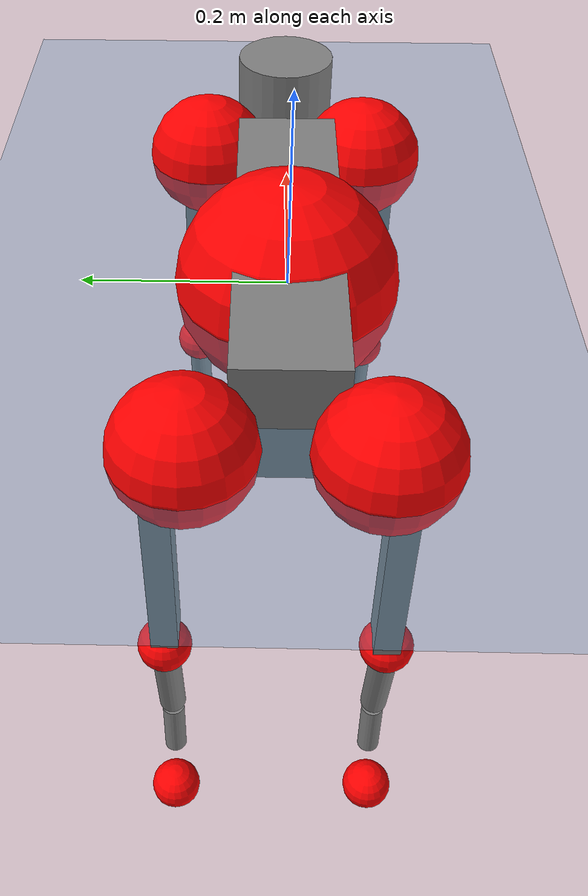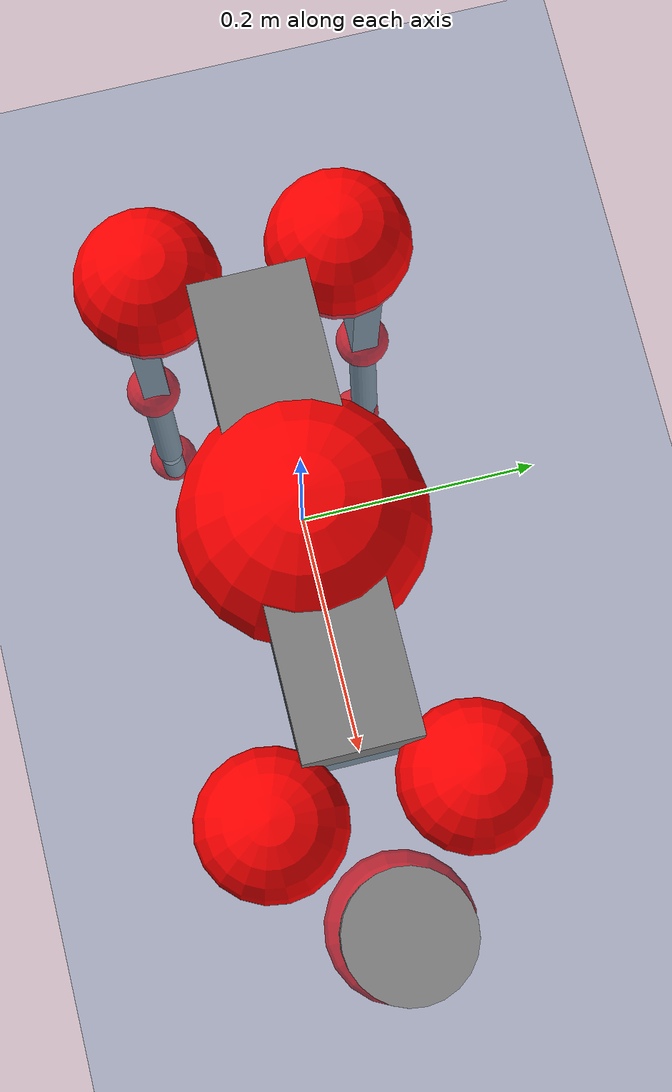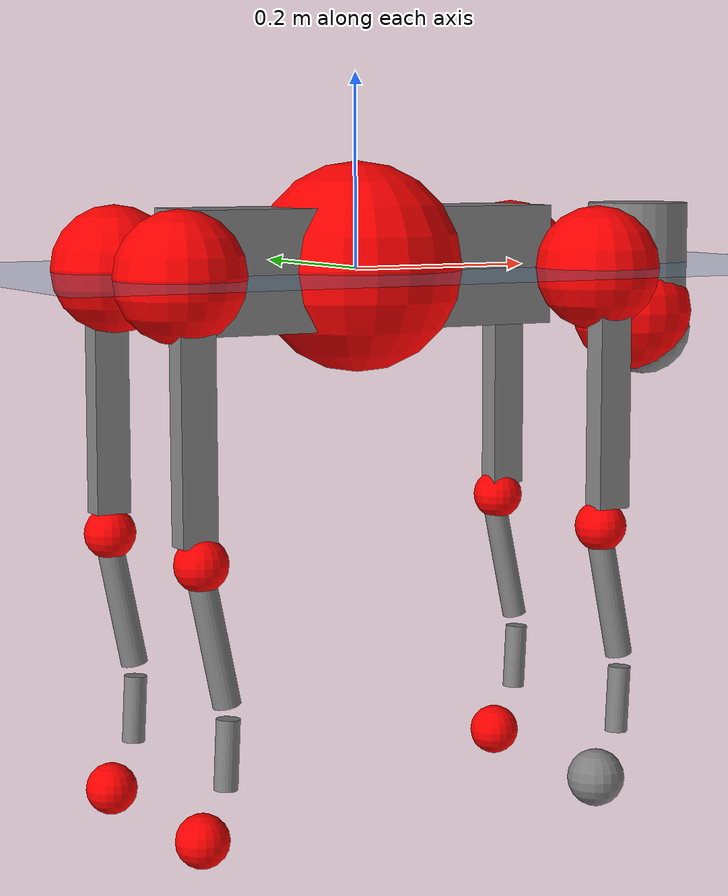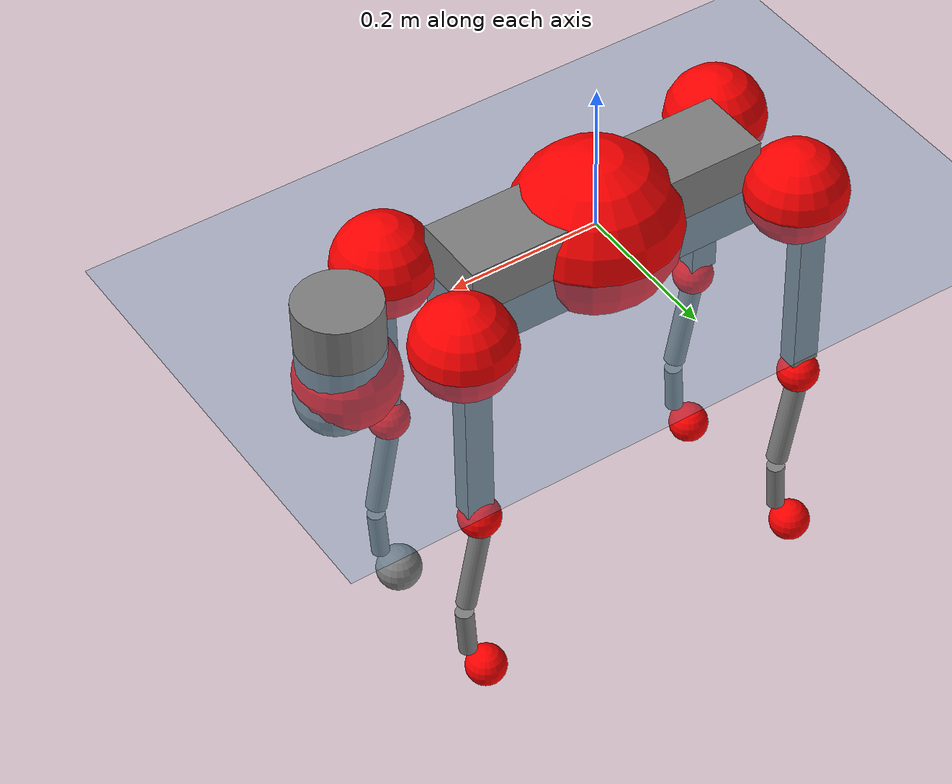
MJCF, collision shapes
<mujoco model="go2">
  <compiler angle="radian" assetdir="assets" balanceinertia="true" inertiafromgeom="false"/>

  <option timestep="0.005" density="1.2" viscosity="2e-05"/>

  <size nkey="1"/>

  <visual>
    <quality shadowsize="8192"/>
    <map shadowclip="0.5"/>
  </visual>

  <default>
    <default class="/">
      <geom contype="0" conaffinity="0" group="1" solref="-1000 -80"/>
      <site size="0.01 0.005 0.005" group="5"/>
      <general forcelimited="true" biastype="affine" gainprm="20" biasprm="0 -20 -0.5"/>
      <default class="go2">
        <joint armature="0.01" damping="0.01" frictionloss="0.2"/>
        <geom condim="1" margin="0.001"/>
        <default class="visual">
          <geom type="mesh" group="2"/>
        </default>
        <default class="collision">
          <geom group="3"/>
          <default class="foot">
            <geom size="0.022 0 0" condim="6" priority="1" friction="0.8 0.02 0.01" solimp="0.015 1 0.022"/>
          </default>
        </default>
        <default class="reward_collision_sphere">
          <geom group="5" rgba="1 0 0 1"/>
        </default>
      </default>
    </default>
  </default>

  <asset>
    <texture type="skybox" colorspace="auto" name="//unnamed_texture_0" builtin="gradient" rgb1="0.95 0.95 0.95" rgb2="0.95 0.95 0.95" width="100" height="600"/>
    <texture type="2d" colorspace="auto" name="texplane" builtin="checker" rgb1="0.345 0.575 0.748" rgb2="0.345 0.575 0.748" markrgb="1 1 1" width="512" height="512"/>
    <material name="MatPlane" class="/" texture="texplane" texuniform="true" texrepeat="2 2" specular="0.9"/>
    <material name="metal" class="/" rgba="0.9 0.95 0.95 1"/>
    <material name="black" class="/" rgba="0 0 0 1"/>
    <material name="white" class="/"/>
    <material name="gray" class="/" rgba="0.671705 0.692426 0.77427 1"/>
    <mesh name="base_0" class="/" file="base_0.obj"/>
    <mesh name="base_1" class="/" file="base_1.obj"/>
    <mesh name="base_2" class="/" file="base_2.obj"/>
    <mesh name="base_3" class="/" file="base_3.obj"/>
    <mesh name="base_4" class="/" file="base_4.obj"/>
    <mesh name="hip_0" class="/" file="hip_0.obj"/>
    <mesh name="hip_1" class="/" file="hip_1.obj"/>
    <mesh name="thigh_0" class="/" file="thigh_0.obj"/>
    <mesh name="thigh_1" class="/" file="thigh_1.obj"/>
    <mesh name="thigh_mirror_0" class="/" file="thigh_mirror_0.obj"/>
    <mesh name="thigh_mirror_1" class="/" file="thigh_mirror_1.obj"/>
    <mesh name="calf_0" class="/" file="calf_0.obj"/>
    <mesh name="calf_1" class="/" file="calf_1.obj"/>
    <mesh name="calf_mirror_0" class="/" file="calf_mirror_0.obj"/>
    <mesh name="calf_mirror_1" class="/" file="calf_mirror_1.obj"/>
    <mesh name="foot" class="/" file="foot.obj"/>
  </asset>

  <worldbody>
    <geom name="floor" class="/" size="100 100 0.125" type="plane" group="0" material="MatPlane"/>
    <light name="toplight_shadow" class="/" pos="0 0 5" dir="0.0990148 0.0990148 -0.990148" type="directional" ambient="0.04 0.04 0.04" diffuse="0.55 0.55 0.55" specular="0.12 0.12 0.12"/>
    <light name="toplight_fill" class="/" pos="0 0 5" dir="0.0990148 0.0990148 -0.990148" type="directional" castshadow="false" ambient="0.04 0.04 0.04" diffuse="0.3 0.3 0.3" specular="0.08 0.08 0.08"/>
    <body name="trunk" childclass="go2" pos="0.00201374 0.000739726 0.00194689" quat="0.999999 0.000176618 -2.35516e-05 0.00108484">
      <inertial pos="0.0289548 0.00440572 -0.00618514" quat="0.000659106 0.718216 -0.00301084 0.695813" mass="9.00811" diaginertia="0.291095 0.0205426 0.0767399"/>
      <joint name="//unnamed_joint_0" type="free" armature="0" damping="0" frictionloss="0"/>
      <geom name="//unnamed_geom_1" class="visual" material="black" mesh="base_0"/>
      <geom name="//unnamed_geom_2" class="visual" material="black" mesh="base_1"/>
      <geom name="//unnamed_geom_3" class="visual" material="black" mesh="base_2"/>
      <geom name="//unnamed_geom_4" class="visual" material="white" mesh="base_3"/>
      <geom name="//unnamed_geom_5" class="visual" material="gray" mesh="base_4"/>
      <geom name="trunk_1" class="collision" size="0.203915 0.0506806 0.0617924" type="box"/>
      <geom name="trunk_2" class="collision" size="0.0542039 0.0487835" pos="0.351633 0 0.0127804" type="cylinder"/>
      <geom name="trunk_3" class="collision" size="0.0509517" pos="0.361503 0 -0.0766823"/>
      <geom name="//unnamed_geom_9" class="reward_collision_sphere" size="0.108408"/>
      <geom name="//unnamed_geom_10" class="reward_collision_sphere" size="0.0650447" pos="0.345464 0 -0.0575118"/>
      <site name="imu" pos="0.000545542 -0.0116266 0.0322674" size="0.0108408"/>
      <camera name="track" pos="0 -1.48079 0" quat="0.707107 0.707107 0 0" mode="trackcom"/>
      <camera name="ego_camera" pos="0.384946 0 0.0575118" quat="-0.5 -0.5 0.5 0.5"/>
      <body name="FL_hip" pos="0.240404 0.0336917 -0.00178764" quat="1 -2.22251e-05 0.000152586 4.50299e-06">
        <inertial pos="-0.0112515 0.00161551 -0.00243169" quat="0.493287 0.501022 0.506466 0.499137" mass="0.903213" diaginertia="0.00265457 0.000130622 0.00164491"/>
        <joint name="FL_hip_joint" pos="0 0 0" axis="0.999899 -0.0136318 0.0040942" range="-1.09107 1.03842" armature="0.00776983" damping="0.0386743" frictionloss="0.191486"/>
        <geom name="//unnamed_geom_11" class="visual" material="metal" mesh="hip_0"/>
        <geom name="//unnamed_geom_12" class="visual" material="gray" mesh="hip_1"/>
        <geom name="//unnamed_geom_13" class="collision" size="0.0498676 0.0216816" pos="0 0.0592316 0" quat="0.707107 0.707107 0 0" type="cylinder"/>
        <geom name="//unnamed_geom_14" class="reward_collision_sphere" size="0.0650447" pos="0 0.0518276 0"/>
        <body name="FL_thigh" pos="0.000118753 0.066625 -2.77113e-05" quat="0.999998 -0.00188056 -0.000328891 -0.000468567">
          <inertial pos="-0.00391597 -0.0163961 -0.0466172" quat="0.832056 0.0862389 -0.0117206 0.547821" mass="1.47932" diaginertia="0.0184361 0.00132281 0.0029701"/>
          <joint name="FL_thigh_joint" pos="0 0 0" axis="0.0295281 0.999492 0.0119919" stiffness="0.00926916" range="-1.61092 3.54596" armature="0.0120231" damping="0.000953339" frictionloss="0.26416"/>
          <geom name="//unnamed_geom_15" class="visual" material="metal" mesh="thigh_0"/>
          <geom name="//unnamed_geom_16" class="visual" material="gray" mesh="thigh_1"/>
          <geom name="//unnamed_geom_17" class="collision" size="0.115454 0.01328 0.0184293" pos="0 0 -0.136111" quat="0.707107 0 0.707107 0" type="box"/>
          <body name="FL_calf" pos="-0.00338535 0.00376552 -0.265879" quat="0.999999 0.000952391 0.00124454 -0.000549149">
            <inertial pos="0.0055428 -0.00116307 -0.18266" quat="0.714616 0.00953065 -0.00739796 0.699413" mass="0.304257" diaginertia="0.00430057 0.000328044 0.000176929"/>
            <joint name="FL_calf_joint" pos="0 0 0" axis="-0.0746295 0.99719 0.00651355" stiffness="0.000977492" range="-2.69166 -0.816569" armature="0.010877" damping="0.0293541" frictionloss="0.203201"/>
            <geom name="//unnamed_geom_18" class="visual" material="gray" mesh="calf_0"/>
            <geom name="//unnamed_geom_19" class="visual" material="black" mesh="calf_1"/>
            <geom name="FL_calf0" class="collision" size="0.0130089 0.0650447" pos="0.0098704 0 -0.0766823" quat="0.994493 0 -0.104807 0" type="cylinder"/>
            <geom name="//unnamed_geom_21" class="collision" size="0.0119249 0.0352325" pos="0.024676 0 -0.18915" quat="0.999688 0 0.0249974 0" type="cylinder"/>
            <geom name="//unnamed_geom_22" class="visual" pos="0 0 -0.272222" quat="1 0 0 0" material="black" mesh="foot"/>
            <geom name="FL_foot" class="foot" size="0.0179533" pos="-0.0024676 0 -0.272222"/>
            <geom name="//unnamed_geom_24" class="reward_collision_sphere" size="0.0271019"/>
            <geom name="//unnamed_geom_25" class="reward_collision_sphere" size="0.0271019" pos="-0.0024676 0 -0.272222"/>
            <site name="FL_foot" class="foot" pos="-0.0024676 0 -0.272222" size="0.0108408"/>
          </body>
        </body>
      </body>
      <body name="FR_hip" pos="0.240116 -0.0332741 -0.00351809" quat="1 6.97937e-05 5.65997e-05 -0.000149626">
        <inertial pos="-0.0108677 -0.00332113 0.00142701" quat="0.498427 0.505409 0.49861 0.497514" mass="0.829083" diaginertia="0.00247289 0.0001297 0.00160526"/>
        <joint name="FR_hip_joint" pos="0 0 0" axis="0.999992 -0.00400372 0.000111909" range="-0.953016 1.09252" armature="0.0130477" damping="0" frictionloss="0.265446"/>
        <geom name="//unnamed_geom_26" class="visual" pos="0 -4.68374e-09 -2.00895e-07" quat="4.63268e-05 1 0 0" material="metal" mesh="hip_0"/>
        <geom name="//unnamed_geom_27" class="visual" pos="0 -7.5929e-09 4.9689e-07" quat="4.63268e-05 1 0 0" material="gray" mesh="hip_1"/>
        <geom name="//unnamed_geom_28" class="collision" size="0.0498676 0.0216816" pos="0 -0.0592316 0" quat="0.707107 0.707107 0 0" type="cylinder"/>
        <geom name="//unnamed_geom_29" class="reward_collision_sphere" size="0.0650447" pos="0 -0.0518276 0"/>
        <body name="FR_thigh" pos="-0.00062113 -0.0760156 0.00053114" quat="1 0.000724602 -0.000447378 0.000287981">
          <inertial pos="-0.00431767 0.0187956 -0.043841" quat="0.563041 -0.0297618 0.0949707 0.820414" mass="1.6207" diaginertia="0.01805 0.00132309 0.00311357"/>
          <joint name="FR_thigh_joint" pos="0 0 0" axis="0.0159518 -0.999864 -0.00417607" stiffness="0.00394427" range="-3.61566 1.53763" armature="0.0106641" damping="0.0200906" frictionloss="0.1367"/>
          <geom name="//unnamed_geom_30" class="visual" material="metal" mesh="thigh_mirror_0"/>
          <geom name="//unnamed_geom_31" class="visual" material="gray" mesh="thigh_mirror_1"/>
          <geom name="//unnamed_geom_32" class="collision" size="0.115454 0.01328 0.0184293" pos="0 0 -0.136111" quat="0.707107 0 0.707107 0" type="box"/>
          <body name="FR_calf" pos="-0.00441536 0.00533972 -0.27134" quat="1 -5.33009e-05 -0.000318379 0.000724138">
            <inertial pos="0.00831724 -0.000774732 -0.185863" quat="0.703881 -0.00245074 0.00445488 0.7103" mass="0.300545" diaginertia="0.00461892 0.00034111 0.000185923"/>
            <joint name="FR_calf_joint" pos="0 0 0" axis="-0.00128852 -0.999963 0.00848257" stiffness="0.00797203" range="0.854396 2.69542" armature="0.00997117" damping="0.0179869" frictionloss="0.279993"/>
            <geom name="//unnamed_geom_33" class="visual" material="gray" mesh="calf_mirror_0"/>
            <geom name="//unnamed_geom_34" class="visual" material="black" mesh="calf_mirror_1"/>
            <geom name="FR_calf0" class="collision" size="0.014093 0.0650447" pos="0.012338 0 -0.0766823" quat="0.995004 0 -0.0998334 0" type="cylinder"/>
            <geom name="//unnamed_geom_36" class="collision" size="0.0119249 0.0352325" pos="0.024676 0 -0.18915" quat="0.999688 0 0.0249974 0" type="cylinder"/>
            <geom name="//unnamed_geom_37" class="visual" pos="0 0 -0.272222" quat="1 0 0 0" material="black" mesh="foot"/>
            <geom name="FR_foot" class="foot" size="0.0303738" pos="-0.0024676 0 -0.272222"/>
            <geom name="//unnamed_geom_39" class="reward_collision_sphere" size="0.0271019"/>
            <geom name="//unnamed_geom_40" class="reward_collision_sphere" size="0.0271019" pos="-0.0024676 0 -0.272222"/>
            <site name="FR_foot" class="foot" pos="-0.0024676 0 -0.272222" size="0.0108408"/>
          </body>
        </body>
      </body>
      <body name="RL_hip" pos="-0.232458 0.0350056 -0.000285577" quat="1 0.000173696 0.000361561 0.000914934">
        <inertial pos="0.00709519 -0.00342642 0.00189487" quat="0.504996 0.50252 0.495411 0.497012" mass="0.876388" diaginertia="0.00260317 0.000128672 0.00180924"/>
        <joint name="RL_hip_joint" pos="0 0 0" axis="-0.999993 -0.00283758 0.00231591" range="-1.02245 1.19434" armature="0.0135748" damping="0.00987602" frictionloss="0.203837"/>
        <geom name="//unnamed_geom_41" class="visual" pos="3.8539e-10 0 7.55454e-08" quat="4.63268e-05 0 1 0" material="metal" mesh="hip_0"/>
        <geom name="//unnamed_geom_42" class="visual" pos="6.24764e-10 0 6.6998e-08" quat="4.63268e-05 0 1 0" material="gray" mesh="hip_1"/>
        <geom name="//unnamed_geom_43" class="collision" size="0.0498676 0.0216816" pos="0 0.0592316 0" quat="0.707107 0.707107 0 0" type="cylinder"/>
        <geom name="//unnamed_geom_44" class="reward_collision_sphere" size="0.0650447" pos="0 0.0518276 0"/>
        <body name="RL_thigh" pos="0.00131596 0.0777937 -0.00208558" quat="1 -2.87298e-05 -2.21284e-05 1.01624e-05">
          <inertial pos="-0.00508938 -0.0198118 -0.0441022" quat="0.830129 0.0814099 -0.0289093 0.550838" mass="1.47134" diaginertia="0.01714 0.00132183 0.00307678"/>
          <joint name="RL_thigh_joint" pos="0 0 0" axis="0.00391831 0.999789 0.0201567" range="-0.516396 4.4901" armature="0.0108318" damping="0.0067767" frictionloss="0.231524"/>
          <geom name="//unnamed_geom_45" class="visual" material="metal" mesh="thigh_0"/>
          <geom name="//unnamed_geom_46" class="visual" material="gray" mesh="thigh_1"/>
          <geom name="//unnamed_geom_47" class="collision" size="0.115454 0.01328 0.0184293" pos="0 0 -0.136111" quat="0.707107 0 0.707107 0" type="box"/>
          <body name="RL_calf" pos="0.00136354 0.00214498 -0.273437" quat="1 -0.000369844 -0.000158206 -0.000113175">
            <inertial pos="0.00724232 -0.000743077 -0.182137" quat="0.710121 -0.0204909 -0.0332508 0.702996" mass="0.304547" diaginertia="0.00432525 0.000332835 0.000194766"/>
            <joint name="RL_calf_joint" pos="0 0 0" axis="-0.00754239 0.999922 -0.00991864" stiffness="0.00903368" range="-2.70531 -0.838964" armature="0.0122329" damping="0" frictionloss="0.200621"/>
            <geom name="//unnamed_geom_48" class="visual" material="gray" mesh="calf_0"/>
            <geom name="//unnamed_geom_49" class="visual" material="black" mesh="calf_1"/>
            <geom name="RL_calf0" class="collision" size="0.014093 0.0650447" pos="0.012338 0 -0.0766823" quat="0.995004 0 -0.0998334 0" type="cylinder"/>
            <geom name="//unnamed_geom_51" class="collision" size="0.0119249 0.0352325" pos="0.024676 0 -0.18915" quat="0.999688 0 0.0249974 0" type="cylinder"/>
            <geom name="//unnamed_geom_52" class="visual" pos="0 0 -0.272222" quat="1 0 0 0" material="black" mesh="foot"/>
            <geom name="RL_foot" class="foot" size="0.0162154" pos="-0.0024676 0 -0.272222"/>
            <geom name="//unnamed_geom_54" class="reward_collision_sphere" size="0.0271019"/>
            <geom name="//unnamed_geom_55" class="reward_collision_sphere" size="0.0271019" pos="-0.0024676 0 -0.272222"/>
            <site name="RL_foot" class="foot" pos="-0.0024676 0 -0.272222" size="0.0108408"/>
          </body>
        </body>
      </body>
      <body name="RR_hip" pos="-0.236249 -0.0296271 -0.000538733" quat="0.999999 -0.00115917 -0.000798145 7.08255e-05">
        <inertial pos="0.0117452 -0.00181779 -0.00414105" quat="0.500832 0.490231 0.504874 0.503928" mass="0.864541" diaginertia="0.00251265 0.000132361 0.00175616"/>
        <joint name="RR_hip_joint" pos="0 0 0" axis="-0.999997 0.00233981 -0.00099886" range="-0.972632 0.922724" armature="0.0115743" damping="0.0222567" frictionloss="0.209004"/>
        <geom name="//unnamed_geom_56" class="visual" pos="-4.02473e-10 -4.68374e-09 2.7644e-07" quat="2.14617e-09 4.63268e-05 4.63268e-05 -1" material="metal" mesh="hip_0"/>
        <geom name="//unnamed_geom_57" class="visual" pos="-5.82514e-10 -7.5929e-09 -4.29892e-07" quat="2.14617e-09 4.63268e-05 4.63268e-05 -1" material="gray" mesh="hip_1"/>
        <geom name="//unnamed_geom_58" class="collision" size="0.0498676 0.0216816" pos="0 -0.0592316 0" quat="0.707107 0.707107 0 0" type="cylinder"/>
        <geom name="//unnamed_geom_59" class="reward_collision_sphere" size="0.0650447" pos="0 -0.0518276 0"/>
        <body name="RR_thigh" pos="0.00288489 -0.0708519 -0.005249" quat="1 -5.25839e-05 -0.000420546 -0.000508287">
          <inertial pos="-0.00672544 0.0144172 -0.0394544" quat="0.551165 -0.0208173 0.0846103 0.829834" mass="1.71458" diaginertia="0.0193941 0.0014313 0.0033483"/>
          <joint name="RR_thigh_joint" pos="0 0 0" axis="-0.00850441 -0.999866 -0.0139585" range="-4.51311 0.507487" armature="0.0103581" damping="0" frictionloss="0.211185"/>
          <geom name="//unnamed_geom_60" class="visual" material="metal" mesh="thigh_mirror_0"/>
          <geom name="//unnamed_geom_61" class="visual" material="gray" mesh="thigh_mirror_1"/>
          <geom name="//unnamed_geom_62" class="collision" size="0.115454 0.01328 0.0184293" pos="0 0 -0.136111" quat="0.707107 0 0.707107 0" type="box"/>
          <body name="RR_calf" pos="0.00489746 -0.0026585 -0.269139" quat="1 -1.59808e-05 -7.00757e-06 3.2899e-05">
            <inertial pos="0.00667815 0.000540492 -0.179418" quat="0.695525 0.00366718 0.0142001 0.718352" mass="0.323522" diaginertia="0.00438982 0.000318604 0.00018815"/>
            <joint name="RR_calf_joint" pos="0 0 0" axis="-0.0126993 -0.999901 0.00598104" range="0.795019 2.69123" armature="0.0139959" damping="0.0192587" frictionloss="0.219521"/>
            <geom name="//unnamed_geom_63" class="visual" material="gray" mesh="calf_mirror_0"/>
            <geom name="//unnamed_geom_64" class="visual" material="black" mesh="calf_mirror_1"/>
            <geom name="RR_calf0" class="collision" size="0.014093 0.0650447" pos="0.012338 0 -0.0766823" quat="0.995004 0 -0.0998334 0" type="cylinder"/>
            <geom name="//unnamed_geom_66" class="collision" size="0.0119249 0.0352325" pos="0.024676 0 -0.18915" quat="0.999688 0 0.0249974 0" type="cylinder"/>
            <geom name="//unnamed_geom_67" class="visual" pos="0 0 -0.272222" quat="1 0 0 0" material="black" mesh="foot"/>
            <geom name="RR_foot" class="foot" size="0.0252035" pos="-0.0024676 0 -0.272222"/>
            <geom name="//unnamed_geom_69" class="reward_collision_sphere" size="0.0271019"/>
            <geom name="//unnamed_geom_70" class="reward_collision_sphere" size="0.0271019" pos="-0.0024676 0 -0.272222"/>
            <site name="RR_foot" class="foot" pos="-0.0024676 0 -0.272222" size="0.0108408"/>
          </body>
        </body>
      </body>
    </body>
  </worldbody>

  <contact>
    <pair class="/" geom1="floor" geom2="FL_foot" name="//unnamed_contact_0"/>
    <pair class="/" geom1="floor" geom2="FR_foot" name="//unnamed_contact_1"/>
    <pair class="/" geom1="floor" geom2="RL_foot" name="//unnamed_contact_2"/>
    <pair class="/" geom1="floor" geom2="RR_foot" name="//unnamed_contact_3"/>
  </contact>

  <actuator>
    <general name="FL_hip" class="/" joint="FL_hip_joint" forcerange="-23.3708 23.3708" gainprm="23.0554" biasprm="0 -23.0554 -0.512412"/>
    <general name="FL_thigh" class="/" joint="FL_thigh_joint" forcerange="-26.3043 26.3043" gainprm="23.0554" biasprm="0 -23.0554 -0.512412"/>
    <general name="FL_calf" class="/" joint="FL_calf_joint" forcerange="-45.2041 45.2041" gainprm="23.0554" biasprm="0 -23.0554 -0.512412"/>
    <general name="FR_hip" class="/" joint="FR_hip_joint" forcerange="-26.7519 26.7519" gainprm="23.0554" biasprm="0 -23.0554 -0.512412"/>
    <general name="FR_thigh" class="/" joint="FR_thigh_joint" forcerange="-26.0377 26.0377" gainprm="23.0554" biasprm="0 -23.0554 -0.512412"/>
    <general name="FR_calf" class="/" joint="FR_calf_joint" forcerange="-56.8385 56.8385" gainprm="23.0554" biasprm="0 -23.0554 -0.512412"/>
    <general name="RL_hip" class="/" joint="RL_hip_joint" forcerange="-25.8833 25.8833" gainprm="23.0554" biasprm="0 -23.0554 -0.512412"/>
    <general name="RL_thigh" class="/" joint="RL_thigh_joint" forcerange="-29.9502 29.9502" gainprm="23.0554" biasprm="0 -23.0554 -0.512412"/>
    <general name="RL_calf" class="/" joint="RL_calf_joint" forcerange="-45.2554 45.2554" gainprm="23.0554" biasprm="0 -23.0554 -0.512412"/>
    <general name="RR_hip" class="/" joint="RR_hip_joint" forcerange="-24.2333 24.2333" gainprm="23.0554" biasprm="0 -23.0554 -0.512412"/>
    <general name="RR_thigh" class="/" joint="RR_thigh_joint" forcerange="-31.1871 31.1871" gainprm="23.0554" biasprm="0 -23.0554 -0.512412"/>
    <general name="RR_calf" class="/" joint="RR_calf_joint" forcerange="-42.4348 42.4348" gainprm="23.0554" biasprm="0 -23.0554 -0.512412"/>
  </actuator>

  <sensor>
    <gyro site="imu" name="imu_angular_velocity"/>
    <velocimeter site="imu" name="imu_linear_velocity"/>
    <framelinvel objtype="site" objname="FL_foot" name="FL_foot_global_linear_velocity"/>
    <framelinvel objtype="site" objname="FR_foot" name="FR_foot_global_linear_velocity"/>
    <framelinvel objtype="site" objname="RL_foot" name="RL_foot_global_linear_velocity"/>
    <framelinvel objtype="site" objname="RR_foot" name="RR_foot_global_linear_velocity"/>
  </sensor>

  <keyframe>
    <key name="home" qpos="0 0 0.325 1 0 0 0 0.1 0.8 -1.5 -0.1 -0.8 1.5 -0.1 0.8 -1.5 0.1 -0.8 1.5"/>
  </keyframe>
</mujoco>
